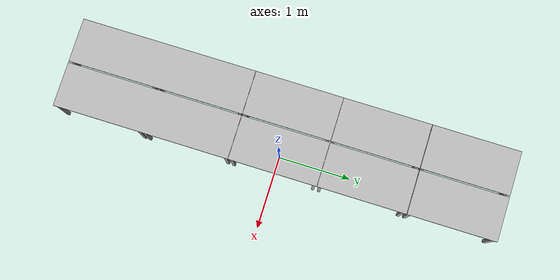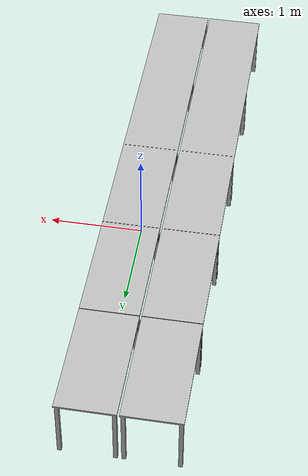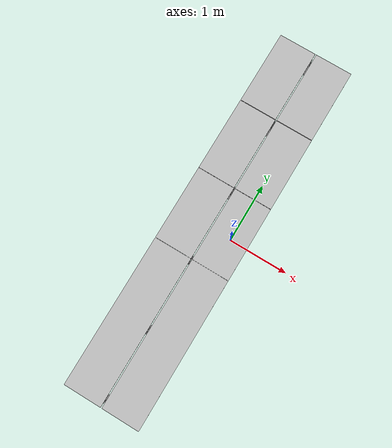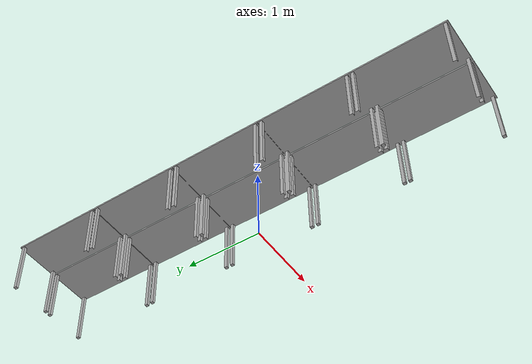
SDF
<?xml version='1.0'?>
<sdf version="1.4">
<model name="table">
    <link name="link">
      <inertial>
        <mass>100.0</mass>
        <inertia>
          <ixx>0.083</ixx>
          <ixy>0.0</ixy>
          <ixz>0.0</ixz>
          <iyy>0.083</iyy>
          <iyz>0.0</iyz>
          <izz>0.083</izz>
        </inertia>
      </inertial>
      <collision name="collision">
        <pose>0 0 0 0 1.57 0</pose>
        <geometry>
          <mesh>
            <uri>model://table/materials/table10_mesh_yy.obj</uri>
          </mesh>
        </geometry>
      </collision>
      <visual name="visual">
        <pose>0 0 0 0 1.57 0</pose>
        <geometry>
          <mesh>
            <uri>model://table/materials/table10_mesh_yy.obj</uri>
            <scale>0.98 1 1</scale>
          </mesh>
        </geometry>
      </visual>
    </link>
    <static>1</static>
  </model>
  <!-- TODO　SDF　IS＿STATIC　gazebo タグをつける -->
</sdf>
